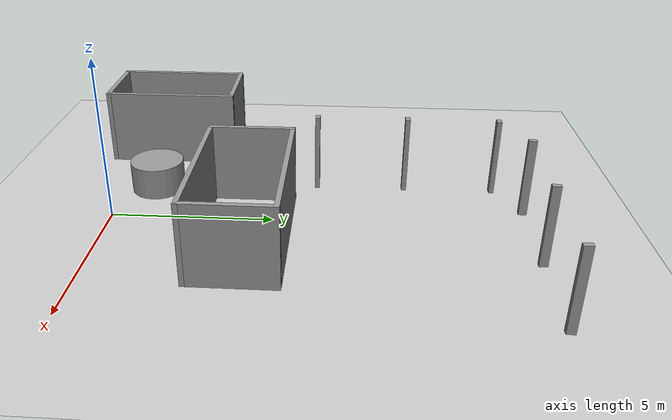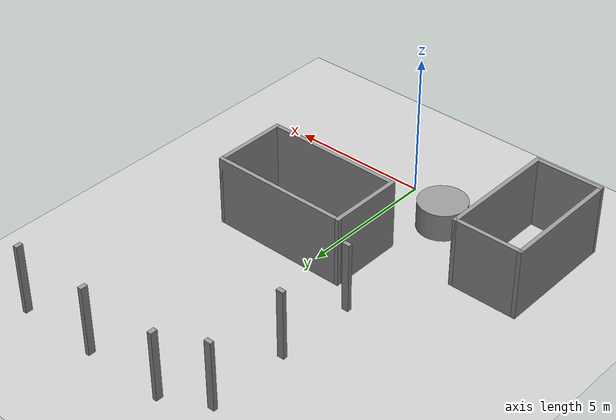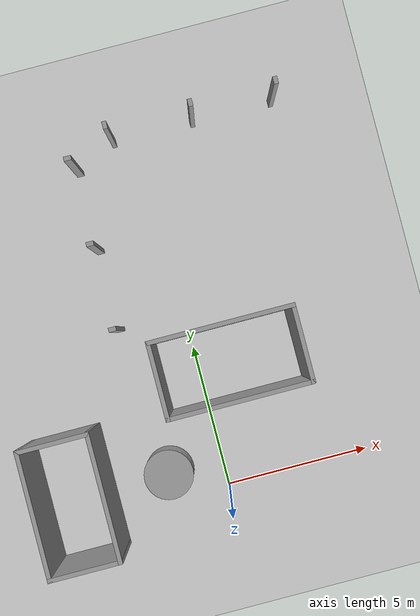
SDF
<sdf version="1.6">
 <world name="default">
  <model name="ground_plane">
   <static>1</static>
   <link name="link">
    <collision name="collision">
     <geometry><plane><normal>0 0 1</normal><size>100 100</size></plane></geometry>
     <surface>
      <contact><collide_bitmask>65535</collide_bitmask></contact>
      <friction><ode><mu>100</mu><mu2>50</mu2></ode></friction>
     </surface>
    </collision>
    <visual name="visual">
     <cast_shadows>0</cast_shadows>
     <geometry><plane><normal>0 0 1</normal><size>100 100</size></plane></geometry>
     <material>
      <script><uri>file://media/materials/scripts/gazebo.material</uri><name>Gazebo/Grey</name></script>
     </material>
    </visual>
   </link>
  </model>
  <model name="2">
   <pose>-5.13605 1.0654 0 0 -0 0</pose>
   <link name="Wall_10">
    <collision name="Wall_10_Collision">
     <geometry><box><size>2.5 0.15 2.5</size></box></geometry>
     <pose>0 0 1.25 0 -0 0</pose>
    </collision>
    <visual name="Wall_10_Visual">
     <pose>0 0 1.25 0 -0 0</pose>
     <geometry><box><size>2.5 0.15 2.5</size></box></geometry>
     <material>
      <script><uri>file://media/materials/scripts/gazebo.material</uri><name>Gazebo/Grey</name></script>
      <ambient>1 1 1 1</ambient>
     </material>
     <meta><layer>0</layer></meta>
    </visual>
    <pose>-0 -2.125 0 0 -0 3.14159</pose>
   </link>
   <link name="Wall_12">
    <collision name="Wall_12_Collision">
     <geometry><box><size>4.4 0.15 2.5</size></box></geometry>
     <pose>0 0 1.25 0 -0 0</pose>
    </collision>
    <visual name="Wall_12_Visual">
     <pose>0 0 1.25 0 -0 0</pose>
     <geometry><box><size>4.4 0.15 2.5</size></box></geometry>
     <material>
      <script><uri>file://media/materials/scripts/gazebo.material</uri><name>Gazebo/Grey</name></script>
      <ambient>1 1 1 1</ambient>
     </material>
     <meta><layer>0</layer></meta>
    </visual>
    <pose>-1.175 0 0 0 -0 1.5708</pose>
   </link>
   <link name="Wall_14">
    <collision name="Wall_14_Collision">
     <geometry><box><size>2.5 0.15 2.5</size></box></geometry>
     <pose>0 0 1.25 0 -0 0</pose>
    </collision>
    <visual name="Wall_14_Visual">
     <pose>0 0 1.25 0 -0 0</pose>
     <geometry><box><size>2.5 0.15 2.5</size></box></geometry>
     <material>
      <script><uri>file://media/materials/scripts/gazebo.material</uri><name>Gazebo/Grey</name></script>
      <ambient>1 1 1 1</ambient>
     </material>
     <meta><layer>0</layer></meta>
    </visual>
    <pose>-0 2.125 0 0 -0 0</pose>
   </link>
   <link name="Wall_8">
    <collision name="Wall_8_Collision">
     <geometry><box><size>4.4 0.15 2.5</size></box></geometry>
     <pose>0 0 1.25 0 -0 0</pose>
    </collision>
    <visual name="Wall_8_Visual">
     <pose>0 0 1.25 0 -0 0</pose>
     <geometry><box><size>4.4 0.15 2.5</size></box></geometry>
     <material>
      <script><uri>file://media/materials/scripts/gazebo.material</uri><name>Gazebo/Grey</name></script>
      <ambient>1 1 1 1</ambient>
     </material>
     <meta><layer>0</layer></meta>
    </visual>
    <pose>1.175 0 0 0 -0 -1.5708</pose>
   </link>
   <static>1</static>
  </model>
  <model name="1">
   <pose>1.10581 4.2545 0 0 -0 0</pose>
   <link name="Wall_0">
    <collision name="Wall_0_Collision">
     <geometry><box><size>2.7 0.15 2.5</size></box></geometry>
     <pose>0 0 1.25 0 -0 0</pose>
    </collision>
    <visual name="Wall_0_Visual">
     <pose>0 0 1.25 0 -0 0</pose>
     <geometry><box><size>2.7 0.15 2.5</size></box></geometry>
     <material>
      <script><uri>file://media/materials/scripts/gazebo.material</uri><name>Gazebo/Grey</name></script>
      <ambient>1 1 1 1</ambient>
     </material>
     <meta><layer>0</layer></meta>
    </visual>
    <pose>-2.425 -0 0 0 -0 -1.5708</pose>
   </link>
   <link name="Wall_2">
    <collision name="Wall_2_Collision">
     <geometry><box><size>5 0.15 2.5</size></box></geometry>
     <pose>0 0 1.25 0 -0 0</pose>
    </collision>
    <visual name="Wall_2_Visual">
     <pose>0 0 1.25 0 -0 0</pose>
     <geometry><box><size>5 0.15 2.5</size></box></geometry>
     <material>
      <script><uri>file://media/materials/scripts/gazebo.material</uri><name>Gazebo/Grey</name></script>
      <ambient>1 1 1 1</ambient>
     </material>
     <meta><layer>0</layer></meta>
    </visual>
    <pose>-0 -1.275 0 0 -0 0</pose>
   </link>
   <link name="Wall_4">
    <collision name="Wall_4_Collision">
     <geometry><box><size>5 0.15 2.5</size></box></geometry>
     <pose>0 0 1.25 0 -0 0</pose>
    </collision>
    <visual name="Wall_4_Visual">
     <pose>0 0 1.25 0 -0 0</pose>
     <geometry><box><size>5 0.15 2.5</size></box></geometry>
     <material>
      <script><uri>file://media/materials/scripts/gazebo.material</uri><name>Gazebo/Grey</name></script>
      <ambient>1 1 1 1</ambient>
     </material>
     <meta><layer>0</layer></meta>
    </visual>
    <pose>-0 1.275 0 0 -0 0</pose>
   </link>
   <link name="Wall_6">
    <collision name="Wall_6_Collision">
     <geometry><box><size>2.7 0.15 2.5</size></box></geometry>
     <pose>0 0 1.25 0 -0 0</pose>
    </collision>
    <visual name="Wall_6_Visual">
     <pose>0 0 1.25 0 -0 0</pose>
     <geometry><box><size>2.7 0.15 2.5</size></box></geometry>
     <material>
      <script><uri>file://media/materials/scripts/gazebo.material</uri><name>Gazebo/Grey</name></script>
      <ambient>1 1 1 1</ambient>
     </material>
     <meta><layer>0</layer></meta>
    </visual>
    <pose>2.425 -0 0 0 -0 -1.5708</pose>
   </link>
   <static>1</static>
  </model>
  <model name="unit_cylinder">
   <pose>-1.8911 1.01296 0.499996 -5e-06 5e-06 -0</pose>
   <link name="link">
    <inertial>
     <mass>1</mass>
     <inertia><ixx>0.145833</ixx><ixy>0</ixy><ixz>0</ixz><iyy>0.145833</iyy><iyz>0</iyz><izz>0.125</izz></inertia>
    </inertial>
    <collision name="collision">
     <geometry><cylinder><radius>0.854435</radius><length>1</length></cylinder></geometry>
    </collision>
    <visual name="visual">
     <geometry><cylinder><radius>0.854435</radius><length>1</length></cylinder></geometry>
     <material>
      <script><name>Gazebo/Grey</name><uri>file://media/materials/scripts/gazebo.material</uri></script>
     </material>
    </visual>
   </link>
  </model>
  <model name="length_0">
   <pose>1.52043 7.73425 0 0 0 -1.5708</pose>
   <link name="Wall_80">
    <collision name="Wall_80_Collision">
     <geometry><box><size>0.25 0.15 2.5</size></box></geometry>
     <pose>0 0 1.25 0 -0 0</pose>
    </collision>
    <visual name="Wall_80_Visual">
     <pose>0 0 1.25 0 -0 0</pose>
     <geometry><box><size>0.25 0.15 2.5</size></box></geometry>
     <material>
      <script><uri>file://media/materials/scripts/gazebo.material</uri><name>Gazebo/Grey</name></script>
      <ambient>1 1 1 1</ambient>
     </material>
     <meta><layer>0</layer></meta>
    </visual>
    <pose>-4.21925 -3.82796 0 0 -0 1.5708</pose>
   </link>
   <link name="Wall_82">
    <collision name="Wall_82_Collision">
     <geometry><box><size>0.25 0.15 2.5</size></box></geometry>
     <pose>0 0 1.25 0 -0 0</pose>
    </collision>
    <visual name="Wall_82_Visual">
     <pose>0 0 1.25 0 -0 0</pose>
     <geometry><box><size>0.25 0.15 2.5</size></box></geometry>
     <material>
      <script><uri>file://media/materials/scripts/gazebo.material</uri><name>Gazebo/Grey</name></script>
      <ambient>1 1 1 1</ambient>
     </material>
     <meta><layer>0</layer></meta>
    </visual>
    <pose>-1.36925 -3.82796 0 0 -0 1.5708</pose>
   </link>
   <link name="Wall_84">
    <collision name="Wall_84_Collision">
     <geometry><box><size>0.25 0.15 2.5</size></box></geometry>
     <pose>0 0 1.25 0 -0 0</pose>
    </collision>
    <visual name="Wall_84_Visual">
     <pose>0 0 1.25 0 -0 0</pose>
     <geometry><box><size>0.25 0.15 2.5</size></box></geometry>
     <material>
      <script><uri>file://media/materials/scripts/gazebo.material</uri><name>Gazebo/Grey</name></script>
      <ambient>1 1 1 1</ambient>
     </material>
     <meta><layer>0</layer></meta>
    </visual>
    <pose>1.48075 -3.82796 0 0 -0 1.5708</pose>
   </link>
   <static>1</static>
  </model>
  <model name="length_0_clone_0">
   <pose>0.606606 8.8597 0 0 -0 3.14159</pose>
   <link name="Wall_80">
    <collision name="Wall_80_Collision">
     <geometry><box><size>0.25 0.15 2.5</size></box></geometry>
     <pose>0 0 1.25 0 -0 0</pose>
    </collision>
    <visual name="Wall_80_Visual">
     <pose>0 0 1.25 0 -0 0</pose>
     <geometry><box><size>0.25 0.15 2.5</size></box></geometry>
     <material>
      <script><uri>file://media/materials/scripts/gazebo.material</uri><name>Gazebo/Grey</name></script>
      <ambient>1 1 1 1</ambient>
     </material>
     <meta><layer>0</layer></meta>
    </visual>
    <pose>-4.21925 -3.82796 0 0 -0 1.5708</pose>
   </link>
   <link name="Wall_82">
    <collision name="Wall_82_Collision">
     <geometry><box><size>0.25 0.15 2.5</size></box></geometry>
     <pose>0 0 1.25 0 -0 0</pose>
    </collision>
    <visual name="Wall_82_Visual">
     <pose>0 0 1.25 0 -0 0</pose>
     <geometry><box><size>0.25 0.15 2.5</size></box></geometry>
     <material>
      <script><uri>file://media/materials/scripts/gazebo.material</uri><name>Gazebo/Grey</name></script>
      <ambient>1 1 1 1</ambient>
     </material>
     <meta><layer>0</layer></meta>
    </visual>
    <pose>-1.36925 -3.82796 0 0 -0 1.5708</pose>
   </link>
   <link name="Wall_84">
    <collision name="Wall_84_Collision">
     <geometry><box><size>0.25 0.15 2.5</size></box></geometry>
     <pose>0 0 1.25 0 -0 0</pose>
    </collision>
    <visual name="Wall_84_Visual">
     <pose>0 0 1.25 0 -0 0</pose>
     <geometry><box><size>0.25 0.15 2.5</size></box></geometry>
     <material>
      <script><uri>file://media/materials/scripts/gazebo.material</uri><name>Gazebo/Grey</name></script>
      <ambient>1 1 1 1</ambient>
     </material>
     <meta><layer>0</layer></meta>
    </visual>
    <pose>1.48075 -3.82796 0 0 -0 1.5708</pose>
   </link>
   <static>1</static>
  </model>
 </world>
</sdf>
